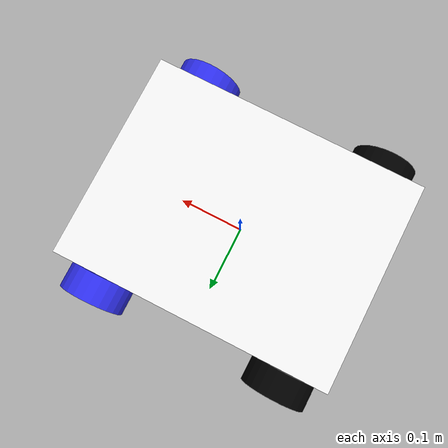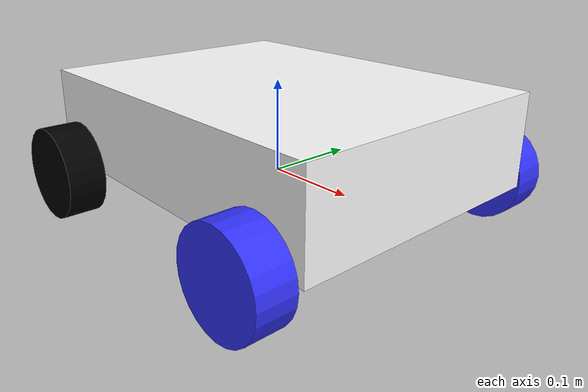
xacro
<?xml version="1.0"?>
<robot xmlns:xacro="http://www.ros.org/wiki/xacro" >

    <xacro:include filename="inertial_macros.xacro"/>

    <!-- COLORS -->
    <material name="white">
        <color rgba="1 1 1 1.0"/>
    </material>

    <material name="orange">
        <color rgba="1 0.3 .1 1.0"/>
    </material>

    <material name="blue">
        <color rgba=".2 .2 1 1.0"/>
    </material>

    <material name="black">
        <color rgba="0 0 0 1.0"/>
    </material>

    <material name="blurrywood">
        <color rgba="1 0.4 0.2 1"/>
    </material>

    <!-- Base_Link-->

    <link name="base_link">
    </link>

    <!-- BASE FOOTPRINT -->

    <joint name="base_footprint_joint" type="fixed">
        <parent link="base_link"/>
        <child link="base_footprint"/>
        <origin xyz="0 0 0" rpy="0 0 0"/>
    </joint>

    <link name="base_footprint">
    </link>

    <!-- Chassis-->
    <joint name="chassis_joint" type="fixed">
        <parent link="base_link"/>
        <child link="chassis"/>
        <origin xyz="0.0 0.0 0.0" rpy="0.0 0.0 0.0"/>
    </joint>

    <link name="chassis">
        <visual>
            <origin xyz="0.0 0.0 0.05"/>
            <geometry>
                <box size="0.4 .3 .1"/>
            </geometry>
            <material name="white"/>
        </visual>
        <collision>
            <origin xyz="0.0 0.0 0.05"/>
            <geometry>
                <box size=".4 .3 .1"/>
            </geometry>
        </collision>
        <xacro:inertial_box mass="0.5" x="0.4" y="0.3" z="0.1">
            <origin xyz="0.0 0.0 0.5"/>
        </xacro:inertial_box>
    </link>
    <gazebo reference="chassis">
        <material>Gazebo/White</material>
    </gazebo>

    <!-- WHEELS -->

    <joint name="front_left_joint" type="continuous" >
        <origin xyz="0.15 .175 0.0" rpy="${-pi/2} 0.0 0.0"/>
        <parent link="base_link"/>
        <child link="left_front_wheel"/>
        <axis xyz="0.0 0.0 1"/>
    </joint>

    <link name="left_front_wheel">
        <visual>
            <geometry>
                <cylinder radius=".05" length=".04"/>
            </geometry>
            <material name="blue"/>
        </visual>
        <collision>
            <geometry>
                <cylinder radius=".05" length=".04"/>
            </geometry>
        </collision>
        <xacro:inertial_cylinder mass="0.1" radius=".05" length=".04">
            <origin xyz="0.0 0.0 0.5"/>
        </xacro:inertial_cylinder>
    </link>
    <gazebo reference="left_front_wheel">
        <material>Gazebo/Blue</material>
        <mu1 value="0.001"/>
        <mu2 value="0.001"/>
    </gazebo>

    <joint name="front_right_joint" type="continuous" >
        <origin xyz="0.15 -.175 0.0" rpy="${pi/2} 0.0 0.0"/>
        <parent link="base_link"/>
        <child link="right_front_wheel"/>
        <axis xyz="0.0 0.0 -1"/>
    </joint>

    <link name="right_front_wheel">
        <visual>
            <geometry>
                <cylinder radius=".05" length=".04"/>
            </geometry>
            <material name="blue"/>
        </visual>
        <collision>
            <geometry>
                <cylinder radius=".05" length=".04"/>
            </geometry>
        </collision>
        <xacro:inertial_cylinder mass="0.1" radius=".05" length=".04">
            <origin xyz="0.0 0.0 0.5"/>
        </xacro:inertial_cylinder>
    </link>
    <gazebo reference="right_front_wheel">
        <material>Gazebo/Blue</material>
        <mu1 value="0.001"/>
        <mu2 value="0.001"/>
    </gazebo>

    <joint name="back_left_joint" type="continuous" >
        <origin xyz="-0.15 .175 0.0" rpy="${-pi/2} 0.0 0.0"/>
        <parent link="base_link"/>
        <child link="left_back_wheel"/>
        <axis xyz="0.0 0.0 1"/>
    </joint>

    <link name="left_back_wheel">
        <visual>
            <geometry>
                <cylinder radius=".05" length=".04"/>
            </geometry>
            <material name="black"/>
        </visual>
        <collision>
            <geometry>
                <cylinder radius=".05" length=".04"/>
            </geometry>
        </collision>
        <xacro:inertial_cylinder mass="0.1" radius=".05" length=".04">
            <origin xyz="0.0 0.0 0.5"/>
        </xacro:inertial_cylinder>
    </link>
    <gazebo reference="left_back_wheel">
        <material>Gazebo/Black</material>
        <mu1 value="0.001"/>
        <mu2 value="0.001"/>
    </gazebo>

    <joint name="back_right_joint" type="continuous" >
        <origin xyz="-0.15 -.175 0.0" rpy="${pi/2} 0.0 0.0"/>
        <parent link="base_link"/>
        <child link="right_back_wheel"/>
        <axis xyz="0.0 0.0 -1"/>
    </joint>

    <link name="right_back_wheel">
        <visual>
            <geometry>
                <cylinder radius=".05" length=".04"/>
            </geometry>
            <material name="black"/>
        </visual>
        <collision>
            <geometry>
                <cylinder radius=".05" length=".04"/>
            </geometry>
        </collision>
        <xacro:inertial_cylinder mass="0.1" radius=".05" length=".04">
            <origin xyz="0.0 0.0 0.5"/>
        </xacro:inertial_cylinder>
    </link>
    <gazebo reference="right_back_wheel">
        <material>Gazebo/Black</material>
        <mu1 value="0.001"/>
        <mu2 value="0.001"/>
    </gazebo>

</robot>
